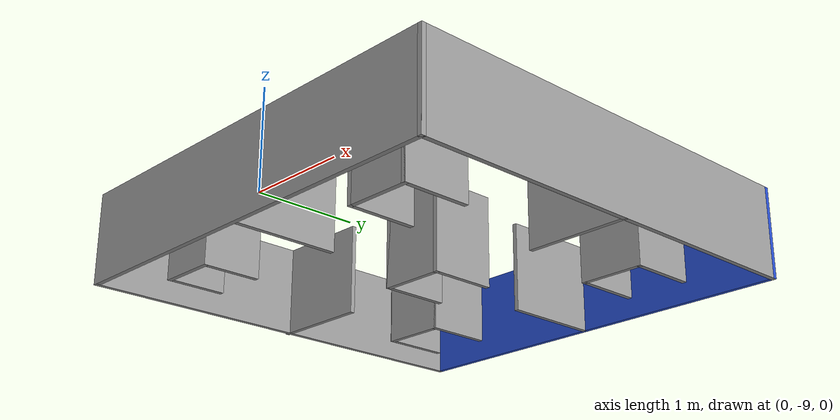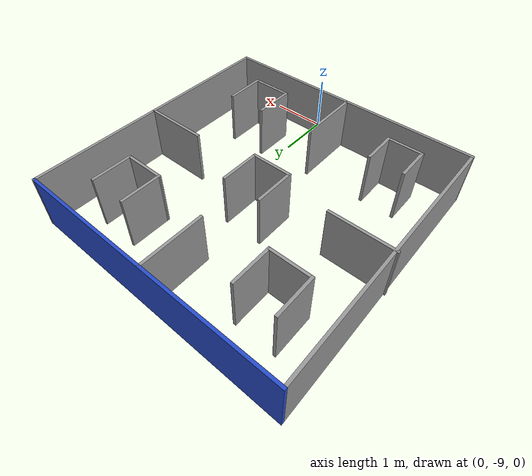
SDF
<?xml version='1.0'?>
<sdf version='1.7'>
  <model name='new_maze'>
    <pose>-0.682877 -4.39103 0 0 -0 0</pose>
    <link name='Wall_63'>
      <collision name='Wall_63_Collision'>
        <geometry>
          <box>
            <size>4.9 0.05 1</size>
          </box>
        </geometry>
        <pose>0 0 0.5 0 -0 0</pose>
      </collision>
      <visual name='Wall_63_Visual'>
        <pose>0 0 0.5 0 -0 0</pose>
        <geometry>
          <box>
            <size>4.9 0.05 1</size>
          </box>
        </geometry>
        <material>
          <script>
            <uri>file://media/materials/scripts/gazebo.material</uri>
            <name>Gazebo/Blue</name>
          </script>
          <ambient>1 1 1 1</ambient>
        </material>
        <meta>
          <layer>0</layer>
        </meta>
      </visual>
      <pose>0.012877 0.484032 0 0 -0 0</pose>
    </link>
    <link name='Wall_65'>
      <collision name='Wall_65_Collision'>
        <geometry>
          <box>
            <size>4.89987 0.05 1</size>
          </box>
        </geometry>
        <pose>0 0 0.5 0 -0 0</pose>
      </collision>
      <visual name='Wall_65_Visual'>
        <pose>0 0 0.5 0 -0 0</pose>
        <geometry>
          <box>
            <size>4.89987 0.05 1</size>
          </box>
        </geometry>
        <material>
          <script>
            <uri>file://media/materials/scripts/gazebo.material</uri>
            <name>Gazebo/Grey</name>
          </script>
          <ambient>1 1 1 1</ambient>
        </material>
        <meta>
          <layer>0</layer>
        </meta>
      </visual>
      <pose>-2.41212 -1.94097 0 0 -0 -1.5708</pose>
    </link>
    <link name='Wall_66'>
      <collision name='Wall_66_Collision'>
        <geometry>
          <box>
            <size>4.90049 0.05 1</size>
          </box>
        </geometry>
        <pose>0 0 0.5 0 -0 0</pose>
      </collision>
      <visual name='Wall_66_Visual'>
        <pose>0 0 0.5 0 -0 0</pose>
        <geometry>
          <box>
            <size>4.90049 0.05 1</size>
          </box>
        </geometry>
        <material>
          <script>
            <uri>file://media/materials/scripts/gazebo.material</uri>
            <name>Gazebo/Grey</name>
          </script>
          <ambient>1 1 1 1</ambient>
        </material>
        <meta>
          <layer>0</layer>
        </meta>
      </visual>
      <pose>0.012877 -4.36597 0 0 -0 0</pose>
    </link>
    <link name='Wall_67'>
      <collision name='Wall_67_Collision'>
        <geometry>
          <box>
            <size>4.90013 0.05 1</size>
          </box>
        </geometry>
        <pose>0 0 0.5 0 -0 0</pose>
      </collision>
      <visual name='Wall_67_Visual'>
        <pose>0 0 0.5 0 -0 0</pose>
        <geometry>
          <box>
            <size>4.90013 0.05 1</size>
          </box>
        </geometry>
        <material>
          <script>
            <uri>file://media/materials/scripts/gazebo.material</uri>
            <name>Gazebo/Grey</name>
          </script>
          <ambient>1 1 1 1</ambient>
        </material>
        <meta>
          <layer>0</layer>
        </meta>
      </visual>
      <pose>2.43788 -1.94097 0 0 -0 1.5708</pose>
    </link>
    <link name='Wall_69'>
      <collision name='Wall_69_Collision'>
        <geometry>
          <box>
            <size>0.65 0.05 1</size>
          </box>
        </geometry>
        <pose>0 0 0.5 0 -0 0</pose>
      </collision>
      <visual name='Wall_69_Visual'>
        <pose>0 0 0.5 0 -0 0</pose>
        <geometry>
          <box>
            <size>0.65 0.05 1</size>
          </box>
        </geometry>
        <material>
          <script>
            <uri>file://media/materials/scripts/gazebo.material</uri>
            <name>Gazebo/Grey</name>
          </script>
          <ambient>1 1 1 1</ambient>
        </material>
        <meta>
          <layer>0</layer>
        </meta>
      </visual>
      <pose>-1.76612 -3.60497 0 0 -0 -1.5708</pose>
    </link>
    <link name='Wall_70'>
      <collision name='Wall_70_Collision'>
        <geometry>
          <box>
            <size>0.658 0.05 1</size>
          </box>
        </geometry>
        <pose>0 0 0.5 0 -0 0</pose>
      </collision>
      <visual name='Wall_70_Visual'>
        <pose>0 0 0.5 0 -0 0</pose>
        <geometry>
          <box>
            <size>0.658 0.05 1</size>
          </box>
        </geometry>
        <material>
          <script>
            <uri>file://media/materials/scripts/gazebo.material</uri>
            <name>Gazebo/Grey</name>
          </script>
          <ambient>1 1 1 1</ambient>
        </material>
        <meta>
          <layer>0</layer>
        </meta>
      </visual>
      <pose>-1.46212 -3.90497 0 0 -0 0</pose>
    </link>
    <link name='Wall_71'>
      <collision name='Wall_71_Collision'>
        <geometry>
          <box>
            <size>0.65 0.05 1</size>
          </box>
        </geometry>
        <pose>0 0 0.5 0 -0 0</pose>
      </collision>
      <visual name='Wall_71_Visual'>
        <pose>0 0 0.5 0 -0 0</pose>
        <geometry>
          <box>
            <size>0.65 0.05 1</size>
          </box>
        </geometry>
        <material>
          <script>
            <uri>file://media/materials/scripts/gazebo.material</uri>
            <name>Gazebo/Grey</name>
          </script>
          <ambient>1 1 1 1</ambient>
        </material>
        <meta>
          <layer>0</layer>
        </meta>
      </visual>
      <pose>-1.15812 -3.60497 0 0 -0 1.5708</pose>
    </link>
    <link name='Wall_73'>
      <collision name='Wall_73_Collision'>
        <geometry>
          <box>
            <size>0.75 0.05 1</size>
          </box>
        </geometry>
        <pose>0 0 0.5 0 -0 0</pose>
      </collision>
      <visual name='Wall_73_Visual'>
        <pose>0 0 0.5 0 -0 0</pose>
        <geometry>
          <box>
            <size>0.75 0.05 1</size>
          </box>
        </geometry>
        <material>
          <script>
            <uri>file://media/materials/scripts/gazebo.material</uri>
            <name>Gazebo/Grey</name>
          </script>
          <ambient>1 1 1 1</ambient>
        </material>
        <meta>
          <layer>0</layer>
        </meta>
      </visual>
      <pose>0.981877 -3.49697 0 0 -0 -1.5708</pose>
    </link>
    <link name='Wall_74'>
      <collision name='Wall_74_Collision'>
        <geometry>
          <box>
            <size>0.75 0.05 1</size>
          </box>
        </geometry>
        <pose>0 0 0.5 0 -0 0</pose>
      </collision>
      <visual name='Wall_74_Visual'>
        <pose>0 0 0.5 0 -0 0</pose>
        <geometry>
          <box>
            <size>0.75 0.05 1</size>
          </box>
        </geometry>
        <material>
          <script>
            <uri>file://media/materials/scripts/gazebo.material</uri>
            <name>Gazebo/Grey</name>
          </script>
          <ambient>1 1 1 1</ambient>
        </material>
        <meta>
          <layer>0</layer>
        </meta>
      </visual>
      <pose>1.33188 -3.84697 0 0 -0 0</pose>
    </link>
    <link name='Wall_75'>
      <collision name='Wall_75_Collision'>
        <geometry>
          <box>
            <size>0.75 0.05 1</size>
          </box>
        </geometry>
        <pose>0 0 0.5 0 -0 0</pose>
      </collision>
      <visual name='Wall_75_Visual'>
        <pose>0 0 0.5 0 -0 0</pose>
        <geometry>
          <box>
            <size>0.75 0.05 1</size>
          </box>
        </geometry>
        <material>
          <script>
            <uri>file://media/materials/scripts/gazebo.material</uri>
            <name>Gazebo/Grey</name>
          </script>
          <ambient>1 1 1 1</ambient>
        </material>
        <meta>
          <layer>0</layer>
        </meta>
      </visual>
      <pose>1.68188 -3.49697 0 0 -0 1.5708</pose>
    </link>
    <link name='Wall_77'>
      <collision name='Wall_77_Collision'>
        <geometry>
          <box>
            <size>0.75 0.05 1</size>
          </box>
        </geometry>
        <pose>0 0 0.5 0 -0 0</pose>
      </collision>
      <visual name='Wall_77_Visual'>
        <pose>0 0 0.5 0 -0 0</pose>
        <geometry>
          <box>
            <size>0.75 0.05 1</size>
          </box>
        </geometry>
        <material>
          <script>
            <uri>file://media/materials/scripts/gazebo.material</uri>
            <name>Gazebo/Grey</name>
          </script>
          <ambient>1 1 1 1</ambient>
        </material>
        <meta>
          <layer>0</layer>
        </meta>
      </visual>
      <pose>-1.8258 -0.474014 0 0 -0 -1.5708</pose>
    </link>
    <link name='Wall_78'>
      <collision name='Wall_78_Collision'>
        <geometry>
          <box>
            <size>0.75 0.05 1</size>
          </box>
        </geometry>
        <pose>0 0 0.5 0 -0 0</pose>
      </collision>
      <visual name='Wall_78_Visual'>
        <pose>0 0 0.5 0 -0 0</pose>
        <geometry>
          <box>
            <size>0.75 0.05 1</size>
          </box>
        </geometry>
        <material>
          <script>
            <uri>file://media/materials/scripts/gazebo.material</uri>
            <name>Gazebo/Grey</name>
          </script>
          <ambient>1 1 1 1</ambient>
        </material>
        <meta>
          <layer>0</layer>
        </meta>
      </visual>
      <pose>-1.46884 -0.824014 0 0 -0 0</pose>
    </link>
    <link name='Wall_79'>
      <collision name='Wall_79_Collision'>
        <geometry>
          <box>
            <size>0.75 0.05 1</size>
          </box>
        </geometry>
        <pose>0 0 0.5 0 -0 0</pose>
      </collision>
      <visual name='Wall_79_Visual'>
        <pose>0 0 0.5 0 -0 0</pose>
        <geometry>
          <box>
            <size>0.75 0.05 1</size>
          </box>
        </geometry>
        <material>
          <script>
            <uri>file://media/materials/scripts/gazebo.material</uri>
            <name>Gazebo/Grey</name>
          </script>
          <ambient>1 1 1 1</ambient>
        </material>
        <meta>
          <layer>0</layer>
        </meta>
      </visual>
      <pose>-1.11884 -0.474014 0 0 -0 1.5708</pose>
    </link>
    <link name='Wall_81'>
      <collision name='Wall_81_Collision'>
        <geometry>
          <box>
            <size>0.75 0.05 1</size>
          </box>
        </geometry>
        <pose>0 0 0.5 0 -0 0</pose>
      </collision>
      <visual name='Wall_81_Visual'>
        <pose>0 0 0.5 0 -0 0</pose>
        <geometry>
          <box>
            <size>0.75 0.05 1</size>
          </box>
        </geometry>
        <material>
          <script>
            <uri>file://media/materials/scripts/gazebo.material</uri>
            <name>Gazebo/Grey</name>
          </script>
          <ambient>1 1 1 1</ambient>
        </material>
        <meta>
          <layer>0</layer>
        </meta>
      </visual>
      <pose>1.05809 -0.450863 0 0 -0 -1.5714</pose>
    </link>
    <link name='Wall_82'>
      <collision name='Wall_82_Collision'>
        <geometry>
          <box>
            <size>0.75 0.05 1</size>
          </box>
        </geometry>
        <pose>0 0 0.5 0 -0 0</pose>
      </collision>
      <visual name='Wall_82_Visual'>
        <pose>0 0 0.5 0 -0 0</pose>
        <geometry>
          <box>
            <size>0.75 0.05 1</size>
          </box>
        </geometry>
        <material>
          <script>
            <uri>file://media/materials/scripts/gazebo.material</uri>
            <name>Gazebo/Grey</name>
          </script>
          <ambient>1 1 1 1</ambient>
        </material>
        <meta>
          <layer>0</layer>
        </meta>
      </visual>
      <pose>1.40788 -0.800968 0 0 -0 0</pose>
    </link>
    <link name='Wall_83'>
      <collision name='Wall_83_Collision'>
        <geometry>
          <box>
            <size>0.75 0.05 1</size>
          </box>
        </geometry>
        <pose>0 0 0.5 0 -0 0</pose>
      </collision>
      <visual name='Wall_83_Visual'>
        <pose>0 0 0.5 0 -0 0</pose>
        <geometry>
          <box>
            <size>0.75 0.05 1</size>
          </box>
        </geometry>
        <material>
          <script>
            <uri>file://media/materials/scripts/gazebo.material</uri>
            <name>Gazebo/Grey</name>
          </script>
          <ambient>1 1 1 1</ambient>
        </material>
        <meta>
          <layer>0</layer>
        </meta>
      </visual>
      <pose>1.75788 -0.450968 0 0 -0 1.5708</pose>
    </link>
    <link name='Wall_85'>
      <collision name='Wall_85_Collision'>
        <geometry>
          <box>
            <size>0.75 0.05 1</size>
          </box>
        </geometry>
        <pose>0 0 0.5 0 -0 0</pose>
      </collision>
      <visual name='Wall_85_Visual'>
        <pose>0 0 0.5 0 -0 0</pose>
        <geometry>
          <box>
            <size>0.75 0.05 1</size>
          </box>
        </geometry>
        <material>
          <script>
            <uri>file://media/materials/scripts/gazebo.material</uri>
            <name>Gazebo/Grey</name>
          </script>
          <ambient>1 1 1 1</ambient>
        </material>
        <meta>
          <layer>0</layer>
        </meta>
      </visual>
      <pose>-0.436123 -1.77897 0 0 -0 -1.5708</pose>
    </link>
    <link name='Wall_86'>
      <collision name='Wall_86_Collision'>
        <geometry>
          <box>
            <size>0.75 0.05 1</size>
          </box>
        </geometry>
        <pose>0 0 0.5 0 -0 0</pose>
      </collision>
      <visual name='Wall_86_Visual'>
        <pose>0 0 0.5 0 -0 0</pose>
        <geometry>
          <box>
            <size>0.75 0.05 1</size>
          </box>
        </geometry>
        <material>
          <script>
            <uri>file://media/materials/scripts/gazebo.material</uri>
            <name>Gazebo/Grey</name>
          </script>
          <ambient>1 1 1 1</ambient>
        </material>
        <meta>
          <layer>0</layer>
        </meta>
      </visual>
      <pose>-0.086123 -2.12897 0 0 -0 0</pose>
    </link>
    <link name='Wall_87'>
      <collision name='Wall_87_Collision'>
        <geometry>
          <box>
            <size>0.75 0.05 1</size>
          </box>
        </geometry>
        <pose>0 0 0.5 0 -0 0</pose>
      </collision>
      <visual name='Wall_87_Visual'>
        <pose>0 0 0.5 0 -0 0</pose>
        <geometry>
          <box>
            <size>0.75 0.05 1</size>
          </box>
        </geometry>
        <material>
          <script>
            <uri>file://media/materials/scripts/gazebo.material</uri>
            <name>Gazebo/Grey</name>
          </script>
          <ambient>1 1 1 1</ambient>
        </material>
        <meta>
          <layer>0</layer>
        </meta>
      </visual>
      <pose>0.263877 -1.77897 0 0 -0 1.5708</pose>
    </link>
    <link name='Wall_89'>
      <collision name='Wall_89_Collision'>
        <geometry>
          <box>
            <size>1.15 0.05 1</size>
          </box>
        </geometry>
        <pose>0 0 0.5 0 -0 0</pose>
      </collision>
      <visual name='Wall_89_Visual'>
        <pose>0 0 0.5 0 -0 0</pose>
        <geometry>
          <box>
            <size>1.15 0.05 1</size>
          </box>
        </geometry>
        <material>
          <script>
            <uri>file://media/materials/scripts/gazebo.material</uri>
            <name>Gazebo/Grey</name>
          </script>
          <ambient>1 1 1 1</ambient>
        </material>
        <meta>
          <layer>0</layer>
        </meta>
      </visual>
      <pose>-1.88812 -1.88697 0 0 -0 0</pose>
    </link>
    <link name='Wall_91'>
      <collision name='Wall_91_Collision'>
        <geometry>
          <box>
            <size>1.15041 0.05 1</size>
          </box>
        </geometry>
        <pose>0 0 0.5 0 -0 0</pose>
      </collision>
      <visual name='Wall_91_Visual'>
        <pose>0 0 0.5 0 -0 0</pose>
        <geometry>
          <box>
            <size>1.15041 0.05 1</size>
          </box>
        </geometry>
        <material>
          <script>
            <uri>file://media/materials/scripts/gazebo.material</uri>
            <name>Gazebo/Grey</name>
          </script>
          <ambient>1 1 1 1</ambient>
        </material>
        <meta>
          <layer>0</layer>
        </meta>
      </visual>
      <pose>1.88588 -1.88697 0 0 -0 3.14159</pose>
    </link>
    <link name='Wall_93'>
      <collision name='Wall_93_Collision'>
        <geometry>
          <box>
            <size>1.14953 0.05 1</size>
          </box>
        </geometry>
        <pose>0 0 0.5 0 -0 0</pose>
      </collision>
      <visual name='Wall_93_Visual'>
        <pose>0 0 0.5 0 -0 0</pose>
        <geometry>
          <box>
            <size>1.14953 0.05 1</size>
          </box>
        </geometry>
        <material>
          <script>
            <uri>file://media/materials/scripts/gazebo.material</uri>
            <name>Gazebo/Grey</name>
          </script>
          <ambient>1 1 1 1</ambient>
        </material>
        <meta>
          <layer>0</layer>
        </meta>
      </visual>
      <pose>-0.033123 -3.79697 0 0 -0 1.5708</pose>
    </link>
    <link name='Wall_95'>
      <collision name='Wall_95_Collision'>
        <geometry>
          <box>
            <size>1.15 0.05 1</size>
          </box>
        </geometry>
        <pose>0 0 0.5 0 -0 0</pose>
      </collision>
      <visual name='Wall_95_Visual'>
        <pose>0 0 0.5 0 -0 0</pose>
        <geometry>
          <box>
            <size>1.15 0.05 1</size>
          </box>
        </geometry>
        <material>
          <script>
            <uri>file://media/materials/scripts/gazebo.material</uri>
            <name>Gazebo/Grey</name>
          </script>
          <ambient>1 1 1 1</ambient>
        </material>
        <meta>
          <layer>0</layer>
        </meta>
      </visual>
      <pose>-0.033123 -0.079968 0 0 -0 -1.5708</pose>
    </link>
    <static>1</static>
  </model>
</sdf>
